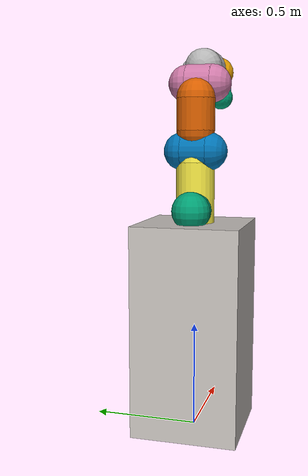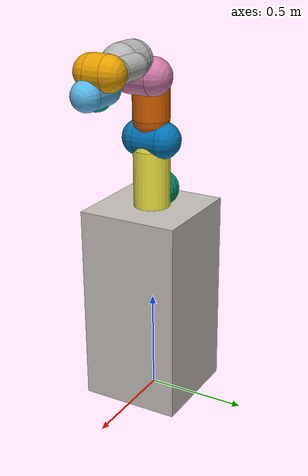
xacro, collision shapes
<?xml version='1.0' encoding='utf-8'?>
<robot xmlns:xacro="http://www.ros.org/wiki/xacro" name="panda">
  <xacro:arg name="arm_id" default="panda" /> <!-- Name of this panda -->
  <xacro:arg name="hand" default="false" /> <!-- Should a franka_gripper be mounted at the flange?" -->
  <xacro:arg name="sim_ignition" default="false" />
  <xacro:arg name="use_fake_hardware" default="false" />
  <xacro:arg name="simulation_controllers"
    default="" />
  <!-- initial position for simulations (Ignition) -->
  <xacro:arg name="initial_positions_file"
    default="$(find franka_description)/config/initial_positions.yaml" />
  <!-- convert to property to use substitution in function -->
  <xacro:property name="initial_positions_file" default="$(arg initial_positions_file)" />

  <link name="world">
      </link>
  <joint name="world_base" type="fixed">
    <origin
      xyz="0 0 0"
      rpy="0 0 0" />
    <parent
      link="world" />
    <child
      link="base" />
  </joint>
  <!-- box shaped table as base -->
  <link name="base">
    <visual>
      <origin xyz="0 0 0.5" rpy="0 0 0" />
      <geometry>
        <box size="0.5 0.5 1" />
      </geometry>
      <material name="metal">
        <color rgba="0.768627450980392 0.749019607843137 0.729411764705882 1" />
      </material>
    </visual>
    <collision>
      <origin xyz="0 0 0.5" rpy="0 0 0" />
      <geometry>
        <box size="0.5 0.5 1" />
      </geometry>
    </collision>
    <inertial>
      <mass value="10" />
      <inertia ixx="1e-3" ixy="0.0" ixz="0.0"
        iyy="1e-3" iyz="0.0"
        izz="1e-3" />
    </inertial>
  </link>

  <!-- Franka arm -->
  <xacro:include filename="$(find franka_description)/urdf/panda_arm.xacro" />
  <xacro:panda_arm arm_id="$(arg arm_id)" sim_ignition="$(arg sim_ignition)" connected_to="base" xyz="0 0 1"
    safety_distance="0.03" />

  <!-- Panda gripper -->
  <xacro:if value="$(arg hand)">
    <xacro:include filename="$(find franka_description)/urdf/hand.xacro" />
    <xacro:hand ns="$(arg arm_id)" rpy="0 0 ${-pi/4}" connected_to="$(arg arm_id)_link8"
      safety_distance="0.03" />
  </xacro:if>

  <xacro:include
    filename="$(find franka_description)/urdf/ros2_control/panda_arm.ros2_control.xacro" />
  <xacro:panda_arm_ros2_control
    ns="$(arg arm_id)"
    sim_ignition="$(arg sim_ignition)"
    use_fake_hardware="$(arg use_fake_hardware)"
    initial_positions="${xacro.load_yaml(initial_positions_file)}" />

  <xacro:if value="$(arg sim_ignition)">
    <!-- Gazebo plugins -->
    <gazebo reference="base">
    </gazebo>
    <gazebo>
      <plugin filename="ign_ros2_control-system" name="ign_ros2_control::IgnitionROS2ControlPlugin">
        <robot_param>robot_description</robot_param>
        <robot_param_node>robot_state_publisher</robot_param_node>
        <parameters>$(find franka_gazebo)/config/franka_controllers.yaml</parameters>
      </plugin>
    </gazebo>
  </xacro:if>
</robot>

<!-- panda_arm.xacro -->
<robot xmlns:xacro="http://www.ros.org/wiki/xacro" name="panda">
  <!-- safety_distance: Minimum safety distance in [m] by which the collision volumes are expanded
  and which is enforced during robot motions -->
  <!-- arm_id: Namespace of the panda arm. Serves to differentiate between arms in case of multiple
  instances. -->
  <!-- Load inertial properties. Property is implicitly passed to macros. -->
  <xacro:property name="inertial_config"
    value="$(find franka_description)/urdf/common/inertial.yaml" />
  <xacro:property name="inertial" value="${xacro.load_yaml(inertial_config)}" />

  <!-- name:     Name of the robot link (without prefix)              -->
  <!-- inertial: Dictionary of inertia properties (see inertial.yaml) -->
  <xacro:macro name="inertial_props" params="name inertial:=^">
    <xacro:unless value="${name in inertial}">${xacro.warning('No inertia properties defined for: '
      + name)}</xacro:unless>
    <xacro:if value="${name in inertial}">
      <!-- Access inertia properties of link 'name' -->
      <xacro:property name="inertial" value="${inertial[name]}" lazy_eval="false" />
      <inertial>
        <origin rpy="${inertial.origin.rpy}" xyz="${inertial.origin.xyz}" />
        <mass value="${inertial.mass}" />
        <xacro:property name="I" value="${inertial.inertia}" />
        <inertia ixx="${I.xx}" ixy="${I.xy}" ixz="${I.xz}" iyy="${I.yy}" iyz="${I.yz}" izz="${I.zz}" />
      </inertial>
    </xacro:if>
  </xacro:macro>

  <xacro:macro name="panda_arm"
    params="arm_id:='panda' sim_ignition:='false' description_pkg:='franka_description' connected_to:='' xyz:='0 0 0' rpy:='0 0 0' safety_distance:=0">
    <xacro:unless value="${not connected_to}">
      <joint name="${arm_id}_joint_${connected_to}" type="fixed">
        <parent link="${connected_to}" />
        <child link="${arm_id}_link0" />
        <origin rpy="${rpy}" xyz="${xyz}" />
      </joint>
    </xacro:unless>

    <link name="${arm_id}_link0">
      <visual>
        <geometry>
          <mesh filename="file://$(find ${description_pkg})/meshes/visual/link0.dae" />
        </geometry>
      </visual>
      <collision>
        <origin xyz="-0.075 0 0.06" rpy="0 ${pi/2} 0" />
        <geometry>
          <cylinder radius="${0.06+safety_distance}" length="0.03" />
        </geometry>
      </collision>
      <collision>
        <origin xyz="-0.06 0 0.06" rpy="0 0 0" />
        <geometry>
          <sphere radius="${0.06+safety_distance}" />
        </geometry>
      </collision>
      <collision>
        <origin xyz="-0.09 0 0.06" rpy="0 0 0" />
        <geometry>
          <sphere radius="${0.06+safety_distance}" />
        </geometry>
      </collision>
    </link>

    <link name="${arm_id}_link1">
      <visual>
        <geometry>
          <mesh filename="file://$(find ${description_pkg})/meshes/visual/link1.dae" />
        </geometry>
      </visual>
      <collision>
        <origin xyz="0 0 -0.1915" rpy="0 0 0" />
        <geometry>
          <cylinder radius="${0.06+safety_distance}" length="0.2830" />
        </geometry>
      </collision>
      <collision>
        <origin xyz="0 0 -0.333" rpy="0 0 0" />
        <geometry>
          <sphere radius="${0.06+safety_distance}" />
        </geometry>
      </collision>
      <collision>
        <origin xyz="0 0 -0.05" rpy="0 0 0" />
        <geometry>
          <sphere radius="${0.06+safety_distance}" />
        </geometry>
      </collision>
      <xacro:if value="${sim_ignition}">
        <xacro:inertial_props name="link1" />
      </xacro:if>
    </link>

    <joint name="${arm_id}_joint1" type="revolute">
      <safety_controller k_position="100.0" k_velocity="40.0" soft_lower_limit="-2.8973"
        soft_upper_limit="2.8973" />
      <origin rpy="0 0 0" xyz="0 0 0.333" />
      <parent link="${arm_id}_link0" />
      <child link="${arm_id}_link1" />
      <axis xyz="0 0 1" />
      <limit effort="87" lower="-2.8973" upper="2.8973" velocity="2.1750" />
      <dynamics D="1" K="7000" damping="0.003" friction="0.0" mu_coulomb="0" mu_viscous="16" />
    </joint>

    <link name="${arm_id}_link2">
      <visual>
        <geometry>
          <mesh filename="file://$(find ${description_pkg})/meshes/visual/link2.dae" />
        </geometry>
      </visual>
      <collision>
        <origin xyz="0 0 0" rpy="0 0 0" />
        <geometry>
          <cylinder radius="${0.06+safety_distance}" length="0.12" />
        </geometry>
      </collision>
      <collision>
        <origin xyz="0 0 -0.06" rpy="0 0 0" />
        <geometry>
          <sphere radius="${0.06+safety_distance}" />
        </geometry>
      </collision>
      <collision>
        <origin xyz="0 0 0.06" rpy="0 0 0" />
        <geometry>
          <sphere radius="${0.06+safety_distance}" />
        </geometry>
      </collision>
      <xacro:if value="${sim_ignition}">
        <xacro:inertial_props name="link2" />
      </xacro:if>
    </link>

    <joint name="${arm_id}_joint2" type="revolute">
      <safety_controller k_position="100.0" k_velocity="40.0" soft_lower_limit="-1.7628"
        soft_upper_limit="1.7628" />
      <origin rpy="${-pi/2} 0 0" xyz="0 0 0" />
      <parent link="${arm_id}_link1" />
      <child link="${arm_id}_link2" />
      <axis xyz="0 0 1" />
      <limit effort="87" lower="-1.7628" upper="1.7628" velocity="2.1750" />
      <dynamics D="1" K="7000" damping="0.003" friction="0.0" mu_coulomb="0" mu_viscous="16" />
    </joint>

    <link name="${arm_id}_link3">
      <visual>
        <geometry>
          <mesh filename="file://$(find ${description_pkg})/meshes/visual/link3.dae" />
        </geometry>
      </visual>
      <collision>
        <origin xyz="0 0 -0.145" rpy="0 0 0" />
        <geometry>
          <cylinder radius="${0.06+safety_distance}" length="0.15" />
        </geometry>
      </collision>
      <collision>
        <origin xyz="0 0 -0.22" rpy="0 0 0" />
        <geometry>
          <sphere radius="${0.06+safety_distance}" />
        </geometry>
      </collision>
      <collision>
        <origin xyz="0 0 -0.07" rpy="0 0 0" />
        <geometry>
          <sphere radius="${0.06+safety_distance}" />
        </geometry>
      </collision>
      <xacro:if value="${sim_ignition}">
        <xacro:inertial_props name="link3" />
      </xacro:if>
    </link>

    <joint name="${arm_id}_joint3" type="revolute">
      <safety_controller k_position="100.0" k_velocity="40.0" soft_lower_limit="-2.8973"
        soft_upper_limit="2.8973" />
      <origin rpy="${pi/2} 0 0" xyz="0 -0.316 0" />
      <parent link="${arm_id}_link2" />
      <child link="${arm_id}_link3" />
      <axis xyz="0 0 1" />
      <limit effort="87" lower="-2.8973" upper="2.8973" velocity="2.1750" />
      <dynamics D="1" K="7000" damping="0.003" friction="0.0" mu_coulomb="0" mu_viscous="16" />
    </joint>

    <link name="${arm_id}_link4">
      <visual>
        <geometry>
          <mesh filename="file://$(find ${description_pkg})/meshes/visual/link4.dae" />
        </geometry>
      </visual>
      <collision>
        <origin xyz="0 0 0" rpy="0 0 0" />
        <geometry>
          <cylinder radius="${0.06+safety_distance}" length="0.12" />
        </geometry>
      </collision>
      <collision>
        <origin xyz="0 0 0.06" rpy="0 0 0" />
        <geometry>
          <sphere radius="${0.06+safety_distance}" />
        </geometry>
      </collision>
      <collision>
        <origin xyz="0 0 -0.06" rpy="0 0 0" />
        <geometry>
          <sphere radius="${0.06+safety_distance}" />
        </geometry>
      </collision>
      <xacro:if value="${sim_ignition}">
        <xacro:inertial_props name="link4" />
      </xacro:if>
    </link>

    <joint name="${arm_id}_joint4" type="revolute">
      <safety_controller k_position="100.0" k_velocity="40.0" soft_lower_limit="-3.0718"
        soft_upper_limit="-0.0698" />
      <origin rpy="${pi/2} 0 0" xyz="0.0825 0 0" />
      <parent link="${arm_id}_link3" />
      <child link="${arm_id}_link4" />
      <axis xyz="0 0 1" />
      <limit effort="87" lower="-3.0718" upper="-0.0698" velocity="2.1750" />
      <dynamics D="1" K="7000" damping="0.003" friction="0.0" mu_coulomb="0" mu_viscous="16" />
    </joint>

    <link name="${arm_id}_link5">
      <visual>
        <geometry>
          <mesh filename="file://$(find ${description_pkg})/meshes/visual/link5.dae" />
        </geometry>
      </visual>
      <collision>
        <origin xyz="0 0 -0.26" rpy="0 0 0" />
        <geometry>
          <cylinder radius="${0.06+safety_distance}" length="0.1" />
        </geometry>
      </collision>
      <collision>
        <origin xyz="0 0 -0.31" rpy="0 0 0" />
        <geometry>
          <sphere radius="${0.06+safety_distance}" />
        </geometry>
      </collision>
      <collision>
        <origin xyz="0 0 -0.21" rpy="0 0 0" />
        <geometry>
          <sphere radius="${0.06+safety_distance}" />
        </geometry>
      </collision>
      <collision>
        <origin xyz="0 0.08 -0.13" rpy="0 0 0" />
        <geometry>
          <cylinder radius="${0.025+safety_distance}" length="0.14" />
        </geometry>
      </collision>
      <collision>
        <origin xyz="0 0.08 -0.06" rpy="0 0 0" />
        <geometry>
          <sphere radius="${0.025+safety_distance}" />
        </geometry>
      </collision>
      <collision>
        <origin xyz="0 0.08 -0.20" rpy="0 0 0" />
        <geometry>
          <sphere radius="${0.025+safety_distance}" />
        </geometry>
      </collision>
      <xacro:if value="${sim_ignition}">
        <xacro:inertial_props name="link5" />
      </xacro:if>
    </link>

    <joint name="${arm_id}_joint5" type="revolute">
      <safety_controller k_position="100.0" k_velocity="40.0" soft_lower_limit="-2.8973"
        soft_upper_limit="2.8973" />
      <origin rpy="${-pi/2} 0 0" xyz="-0.0825 0.384 0" />
      <parent link="${arm_id}_link4" />
      <child link="${arm_id}_link5" />
      <axis xyz="0 0 1" />
      <limit effort="12" lower="-2.8973" upper="2.8973" velocity="2.6100" />
      <dynamics D="1" K="7000" damping="0.003" friction="0.0" mu_coulomb="0" mu_viscous="16" />
    </joint>

    <link name="${arm_id}_link6">
      <visual>
        <geometry>
          <mesh filename="file://$(find ${description_pkg})/meshes/visual/link6.dae" />
        </geometry>
      </visual>
      <collision>
        <origin xyz="0 0 -0.03" rpy="0 0 0" />
        <geometry>
          <cylinder radius="${0.05+safety_distance}" length="0.08" />
        </geometry>
      </collision>
      <collision>
        <origin xyz="0 0 0.01" rpy="0 0 0" />
        <geometry>
          <sphere radius="${0.05+safety_distance}" />
        </geometry>
      </collision>
      <collision>
        <origin xyz="0 0 -0.07" rpy="0 0 0" />
        <geometry>
          <sphere radius="${0.05+safety_distance}" />
        </geometry>
      </collision>
      <xacro:if value="${sim_ignition}">
        <xacro:inertial_props name="link6" />
      </xacro:if>
    </link>

    <joint name="${arm_id}_joint6" type="revolute">
      <safety_controller k_position="100.0" k_velocity="40.0" soft_lower_limit="-0.0175"
        soft_upper_limit="3.7525" />
      <origin rpy="${pi/2} 0 0" xyz="0 0 0" />
      <parent link="${arm_id}_link5" />
      <child link="${arm_id}_link6" />
      <axis xyz="0 0 1" />
      <limit effort="12" lower="-0.0175" upper="3.7525" velocity="2.6100" />
      <dynamics D="1" K="7000" damping="0.003" friction="0.0" mu_coulomb="0" mu_viscous="16" />
    </joint>

    <link name="${arm_id}_link7">
      <visual>
        <geometry>
          <mesh filename="file://$(find ${description_pkg})/meshes/visual/link7.dae" />
        </geometry>
      </visual>
      <collision>
        <origin xyz="0 0 0.01" rpy="0 0 0" />
        <geometry>
          <cylinder radius="${0.04+safety_distance}" length="0.14" />
        </geometry>
      </collision>
      <collision>
        <origin xyz="0 0 0.08" rpy="0 0 0" />
        <geometry>
          <sphere radius="${0.04+safety_distance}" />
        </geometry>
      </collision>
      <collision>
        <origin xyz="0 0 -0.06" rpy="0 0 0" />
        <geometry>
          <sphere radius="${0.04+safety_distance}" />
        </geometry>
      </collision>
      <xacro:if value="${sim_ignition}">
        <xacro:inertial_props name="link7" />
      </xacro:if>
    </link>

    <joint name="${arm_id}_joint7" type="revolute">
      <safety_controller k_position="100.0" k_velocity="40.0" soft_lower_limit="-2.8973"
        soft_upper_limit="2.8973" />
      <origin rpy="${pi/2} 0 0" xyz="0.088 0 0" />
      <parent link="${arm_id}_link6" />
      <child link="${arm_id}_link7" />
      <axis xyz="0 0 1" />
      <limit effort="12" lower="-2.8973" upper="2.8973" velocity="2.6100" />
      <dynamics D="1" K="7000" damping="0.003" friction="0.0" mu_coulomb="0" mu_viscous="16" />
    </joint>

    <link name="${arm_id}_link8">
      <collision>
        <origin xyz="0.0424 0.0424 -0.0250" rpy="${pi} ${pi/2} ${pi/2}" />
        <geometry>
          <cylinder radius="${0.03+safety_distance}" length="0.01" />
        </geometry>
      </collision>
      <collision>
        <origin xyz="0.0424 0.0424 -0.02" rpy="0 0 0" />
        <geometry>
          <sphere radius="${0.03+safety_distance}" />
        </geometry>
      </collision>
      <collision>
        <origin xyz="0.0424 0.0424 -0.03" rpy="0 0 0" />
        <geometry>
          <sphere radius="${0.03+safety_distance}" />
        </geometry>
      </collision>
    </link>

    <joint name="${arm_id}_joint8" type="fixed">
      <origin rpy="0 0 0" xyz="0 0 0.107" />
      <parent link="${arm_id}_link7" />
      <child link="${arm_id}_link8" />
    </joint>

  </xacro:macro>
</robot>
